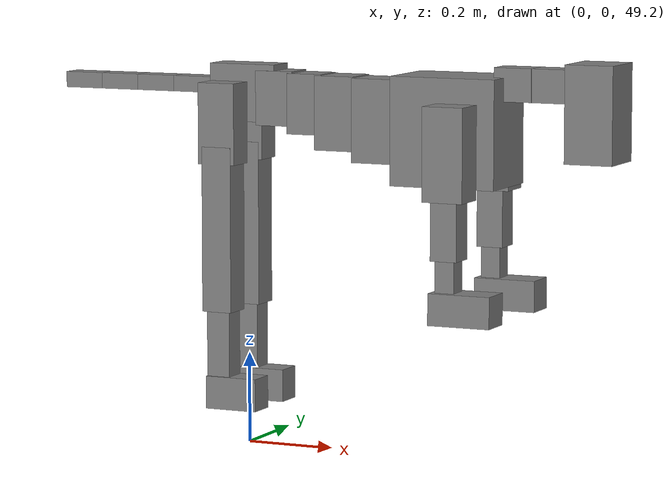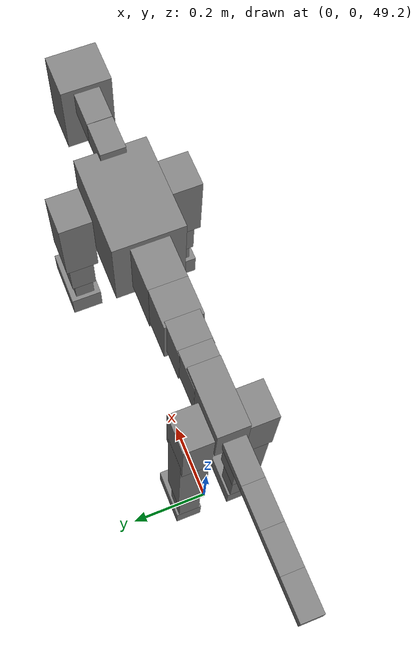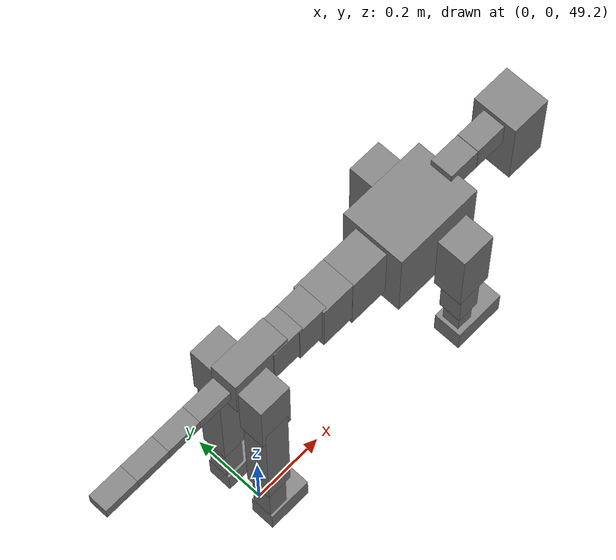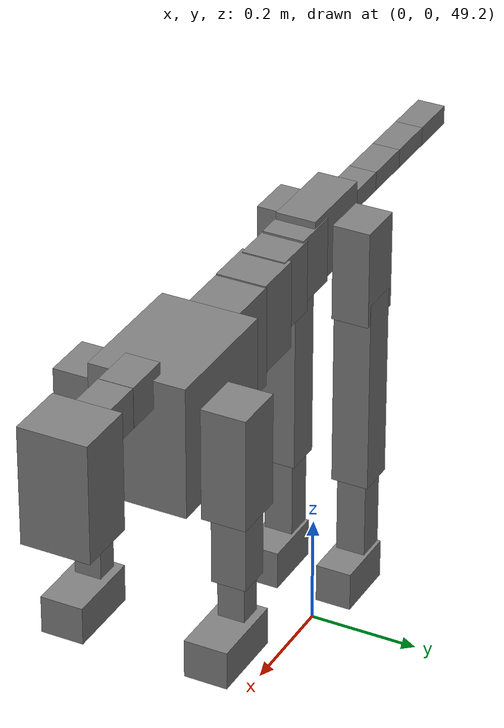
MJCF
<mujoco model="dog">

    <default>
        <joint armature="0.02" stiffness="1" damping="0.2" limited="true"/>
        <geom condim="3" friction="1 0.05 0.05" margin="0.01"/>
        <motor ctrllimited="true" ctrlrange="-1.0 1.0" forcelimited="true" gear="50"/>
    </default>

    <compiler inertiafromgeom="true" angle="radian"/>

    <option timestep="0.016" iterations="50" tolerance="1e-10" solver="Newton" jacobian="dense" cone="pyramidal"/>

    <size nconmax="20000" njmax="60000" nstack="5000000"/>
    <visual>
        <map force="0.1" zfar="30"/>
        <rgba haze="0.15 0.25 0.35 1"/>
        <quality shadowsize="2048"/>
        <global offwidth="800" offheight="800"/>
    </visual>

    <asset>
        <texture type="skybox" builtin="gradient" rgb1="0.3 0.5 0.7" rgb2="0 0 0" width="512" height="512"/>
        <texture name="texplane" type="2d" builtin="checker" rgb1=".2 .3 .4" rgb2=".1 0.15 0.2" width="512" height="512"
                 mark="cross" markrgb=".8 .8 .8"/>
        <texture name="texgeom" type="cube" builtin="flat" mark="cross" width="127" height="1278" rgb1="0.8 0.6 0.4"
                 rgb2="0.8 0.6 0.4" markrgb="1 1 1" random="0.01"/>

        <material name="matplane" reflectance="0.3" texture="texplane" texrepeat="1 1" texuniform="true"/>
        <material name="matgeom" texture="texgeom" texuniform="true" rgba="0.8 0.6 .4 1"/>
    </asset>

    <worldbody>
        <geom name="floor" pos="0 0 0" size="0 0 .25" type="plane" material="matplane" condim="3"/>

        <light directional="false" diffuse=".2 .2 .2" specular="0 0 0" pos="0 0 5" dir="0 0 -1" castshadow="false"/>
        <light mode="targetbodycom" target="torso" directional="false" diffuse=".8 .8 .8" specular="0.3 0.3 0.3"
               pos="0 0 4.0" dir="0 0 -1"/>

        <body name="root" pos="0 0 50">
            <freejoint name="root_1"/>
            <geom type="box" pos="0 0 -0.02" size="0.0774  0.0358  0.063" density="2030"/>

            <body name="spine1" pos="0.054 0 0">
                <joint name="spine1_y" axis="0 1 0" range="0 0.7" limited="true"/>
                <geom type="box" pos="0.02375 0 -0.03" size="0.04375  0.0375  0.05985" density="2030"/>

                <body name="spine2" pos="0.0612 0 0">
                    <joint name="spine2_y" axis="0 1 0" range="-0.15 0.15" limited="true"/>
                    <geom type="box" pos="0.03555  0  -0.04" size="0.04055  0.039  0.06615" density="2030"/>

                    <body name="spine3" pos="0.0730 0 0">
                        <joint name="spine3_y" axis="0 1 0" range="-0.15 0.15" limited="true"/>
                        <geom type="box" pos="0.03555  0  -0.057" size="0.04555  0.0445  0.081" density="2030"/>

                        <body name="spine4" pos="0.0780 0 0">
                            <joint name="spine4_y" axis="0 1 0" range="-0.15 0.15" limited="true"/>
                            <geom type="box" pos="0.05265  0  -0.07" size="0.05265  0.045  0.09135" density="2030"/>

                            <body name="torso" pos="0.1082 0 0">
                                <joint name="torso_y" axis="0 1 0" range="-0.15 0.15" limited="true"/>
                                <geom type="box" pos="0.11925  0  -0.085" size="0.11925  0.085  0.11745"
                                      density="2030"/>

                                <body name="neck1" pos="0.2160  0   0.0180">
                                    <joint name="neck1_y" axis="0 1 0" range="-1.2  -1" limited="true"/>
                                    <geom type="box" pos="0.0423  0  0" size="0.0423  0.03  0.036" density="2325"/>

                                    <body name="neck2" pos="0.0853  0  0">
                                        <joint name="neck2_y" axis="0 1 0" range="0.1  0" limited="true"/>
                                        <geom type="box" pos="0.0423  0  0" size="0.0423  0.03  0.036" density="2325"/>

                                        <body name="head" pos="0.0853  0  0">
                                            <joint name="head_y" axis="0 1 0" range="-0.3  -0.2" limited="true"/>
                                            <geom type="box" pos="0.0531  0  -0.055" size="0.0531  0.06  0.1044"
                                                  density="4030"/>

                                        </body>
                                    </body>
                                </body>

                                <body name="front_shoulder" pos="0.156  0   -0.0480">
                                    <joint name="front_shoulder_y" axis="0 1 0" range="-1 1.5" limited="true"/>
                                    <geom type="box" pos="0 0.13 -0.0741" size="0.0457  0.0391  0.1008" density="1158"/>
                                    <geom type="box" pos="0 -0.13 -0.0741" size="0.0457  0.0391  0.1008"
                                          density="1158"/>

                                    <body name="front_elbow" pos="0  0  -0.1482">
                                        <joint name="front_elbow_y" axis="0 1 0" range="-2 0" limited="true"/>
                                        <geom type="box" pos="0 0.13 -0.0757" size="0.0297  0.0304  0.0757"
                                              density="1081"/>
                                        <geom type="box" pos="0 -0.13 -0.0757" size="0.0297  0.0304  0.0757"
                                              density="1081"/>

                                        <body name="front_wrist" pos="0  0  -0.1515">
                                            <joint name="front_wrist_y" axis="0 1 0" range="-0.2 0" limited="true"/>
                                            <geom type="box" pos="0 0.13 -0.0413" size="0.0214  0.0238  0.0544"
                                                  density="1664"/>
                                            <geom type="box" pos="0 -0.13 -0.0413" size="0.0214  0.0238  0.0544"
                                                  density="1664"/>

                                            <body name="front_finger_end" pos="0  0  -0.0825">
                                                <joint name="front_finger_y" axis="0 1 0" range="-0.4 1"
                                                       limited="true"/>
                                                <geom type="box" pos="0.0380  0.13  -0.0193"
                                                      size="0.0697  0.0380  0.0343" density="1515"/>
                                                <geom type="box" pos="0.0380  -0.13  -0.0193"
                                                      size="0.0697  0.0380  0.0343" density="1515"/>

                                            </body>

                                        </body>
                                    </body>
                                </body>

                            </body>
                        </body>
                    </body>
                </body>
            </body>

            <body name="back_hip" pos="-0.03 0 -0.018">
                <joint name="back_hip_y" axis="0 1 0" range="-1.5 0.3" limited="true"/>
                <geom type="box" pos="0 0.07 -0.0663" size="0.0430  0.0337  0.0891" density="1154"/>
                <geom type="box" pos="0 -0.07 -0.0663" size="0.0430  0.0337  0.0891" density="1154"/>

                <body name="back_knee" pos="0  0  -0.1326">
                    <joint name="back_knee_y" axis="0 1 0" range="0 2.8" limited="true"/>
                    <geom type="box" pos="0 0.07 -0.1658" size="0.0344  0.0339  0.1813" density="1227"/>
                    <geom type="box" pos="0 -0.07 -0.1658" size="0.0344  0.0339  0.1813" density="1227"/>

                    <body name="back_ankle" pos="0  0  -0.3316">
                        <joint name="back_ankle_y" axis="0 1 0" range="-2.2 0" limited="true"/>
                        <geom type="box" pos="0 0.07 -0.0871" size="0.0266  0.0266  0.0983" density="1284"/>
                        <geom type="box" pos="0 -0.07 -0.0871" size="0.0266  0.0266  0.0983" density="1284"/>

                        <body name="back_toe_end" pos="0  0  -0.1742">
                            <joint name="back_toe_y" axis="0 1 0" range="-0.4 1" limited="true"/>
                            <geom type="box" pos="0.0325  0.07  -0.0210" size="0.0596  0.0325  0.0360" density="1515"/>
                            <geom type="box" pos="0.0325  -0.07  -0.0210" size="0.0596  0.0325  0.0360" density="1515"/>

                        </body>
                    </body>
                </body>
            </body>

            <body name="tail1" pos="-0.074 0 -0.006">
                <joint name="tail1_y" axis="0 1 0" range="-0.2 0.2" limited="true"/>
                <geom type="box" pos="-0.0536  0  0" size="0.045  0.025  0.0175" density="1587"/>

                <body name="tail2" pos="-0.09 0 0">
                    <joint name="tail2_y" axis="0 1 0" range="-0.2 0.2" limited="true"/>
                    <geom type="box" pos="-0.0536  0  0" size="0.045  0.025  0.0175" density="1587"/>

                    <body name="tail3" pos="-0.09 0 0">
                        <joint name="tail3_y" axis="0 1 0" range="-0.2 0.2" limited="true"/>
                        <geom type="box" pos="-0.0536  0  0" size="0.045  0.025  0.0175" density="1587"/>

                        <body name="tail4" pos="-0.09 0 0">
                            <joint name="tail4_y" axis="0 1 0" range="-0.2 0.2" limited="true"/>
                            <geom type="box" pos="-0.0536  0  0" size="0.045  0.025  0.0175" density="1587"/>

                        </body>
                    </body>
                </body>
            </body>
        </body>
    </worldbody>

    <actuator>
        <motor joint="spine1_y" forcerange="-150 150     "/>
        <motor joint="spine2_y" forcerange="-150 150     "/>
        <motor joint="spine3_y" forcerange="-150 150     "/>
        <motor joint="spine4_y" forcerange="-150 150     "/>
        <motor joint="torso_y" forcerange="-150 150     "/>
        <motor joint="neck1_y" forcerange="-100 100       "/>
        <motor joint="neck2_y" forcerange="-100 100       "/>
        <motor joint="head_y" forcerange="-150 150       "/>
        <motor joint="front_shoulder_y" forcerange="-176.61 183.90"/>
        <motor joint="front_elbow_y" forcerange="-179.74 141.33"/>
        <motor joint="front_wrist_y" forcerange="-51.11 139.20"/>
        <motor joint="front_finger_y" forcerange="-77.87 84.79"/>
        <motor joint="back_hip_y" forcerange="-348.79 300.78"/>
        <motor joint="back_knee_y" forcerange="-344.45 348.79"/>
        <motor joint="back_angle_y" forcerange="-241.25 84.68"/>
        <motor joint="back_toe_y" forcerange="-67.06 113.13"/>
        <motor joint="tail1_y" forcerange="-50 50     "/>
        <motor joint="tail2_y" forcerange="-50 50     "/>
        <motor joint="tail3_y" forcerange="-50 50     "/>
        <motor joint="tail4_y" forcerange="-50 50     "/>
    </actuator>
</mujoco>
